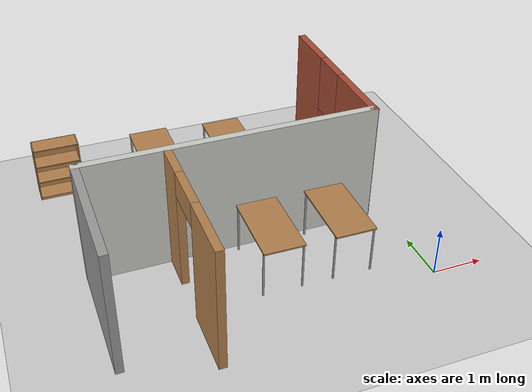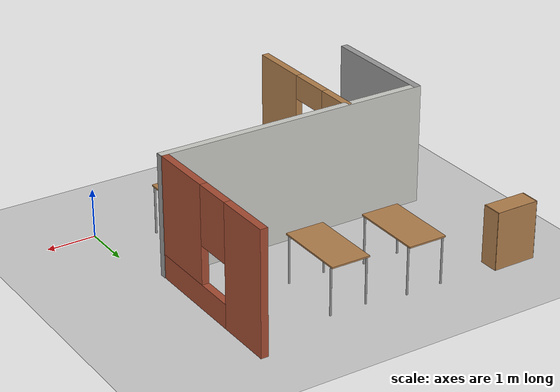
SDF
<sdf version="1.6">
 <world name="default">
  <model name="ground_plane">
   <static>1</static>
   <link name="link">
    <collision name="collision">
     <geometry><plane><normal>0 0 1</normal><size>100 100</size></plane></geometry>
     <surface><friction><ode><mu>100</mu><mu2>50</mu2></ode></friction></surface>
    </collision>
    <visual name="visual">
     <cast_shadows>0</cast_shadows>
     <geometry><plane><normal>0 0 1</normal><size>100 100</size></plane></geometry>
     <material>
      <script><uri>file://media/materials/scripts/gazebo.material</uri><name>Gazebo/Grey</name></script>
     </material>
    </visual>
   </link>
  </model>
  <model name="Building">
   <link name="Wall_18">
    <pose>1.7604 1.2188 0 0 0 -1.5708</pose>
    <visual name="Wall_18_Visual_0">
     <pose>-1.07615 0 1.25 0 -0 0</pose>
     <geometry><box><size>0.804732 0.15 2.5</size></box></geometry>
     <material>
      <script><uri>file://media/materials/scripts/gazebo.material</uri><name>Gazebo/Wood</name></script>
      <ambient>1 1 1 1</ambient>
      <shader type="pixel"/>
      <diffuse>1 1 1 1</diffuse>
      <specular>0.2 0.2 0.2 1</specular>
      <emissive>0 0 0 1</emissive>
     </material>
     <meta><layer>0</layer></meta>
    </visual>
    <visual name="Wall_18_Visual_1">
     <pose>0.852366 0 1.25 0 -0 0</pose>
     <geometry><box><size>1.2523 0.15 2.5</size></box></geometry>
     <material>
      <script><uri>file://media/materials/scripts/gazebo.material</uri><name>Gazebo/Wood</name></script>
      <ambient>1 1 1 1</ambient>
      <shader type="pixel"/>
      <diffuse>1 1 1 1</diffuse>
      <specular>0.2 0.2 0.2 1</specular>
      <emissive>0 0 0 1</emissive>
     </material>
     <meta><layer>0</layer></meta>
    </visual>
    <visual name="Wall_18_Visual_2">
     <pose>-0.223783 0 2.25 0 -0 0</pose>
     <geometry><box><size>0.9 0.15 0.5</size></box></geometry>
     <material>
      <script><uri>file://media/materials/scripts/gazebo.material</uri><name>Gazebo/Wood</name></script>
      <ambient>1 1 1 1</ambient>
      <shader type="pixel"/>
      <diffuse>1 1 1 1</diffuse>
      <specular>0.2 0.2 0.2 1</specular>
      <emissive>0 0 0 1</emissive>
     </material>
     <meta><layer>0</layer></meta>
    </visual>
    <collision name="Wall_18_Collision_0">
     <pose>-1.07615 0 1.25 0 -0 0</pose>
     <geometry><box><size>0.804732 0.15 2.5</size></box></geometry>
     <surface>
      <friction>
       <ode><mu>1</mu><mu2>1</mu2><fdir1>0 0 0</fdir1><slip1>0</slip1><slip2>0</slip2></ode>
       <torsional>
        <coefficient>1</coefficient>
        <patch_radius>0</patch_radius>
        <surface_radius>0</surface_radius>
        <use_patch_radius>1</use_patch_radius>
        <ode><slip>0</slip></ode>
       </torsional>
      </friction>
      <bounce><restitution_coefficient>0</restitution_coefficient><threshold>1e+06</threshold></bounce>
      <contact>
       <collide_without_contact>0</collide_without_contact>
       <collide_without_contact_bitmask>1</collide_without_contact_bitmask>
       <collide_bitmask>1</collide_bitmask>
       <ode>
        <soft_cfm>0</soft_cfm>
        <soft_erp>0.2</soft_erp>
        <kp>1e+13</kp>
        <kd>1</kd>
        <max_vel>0.01</max_vel>
        <min_depth>0</min_depth>
       </ode>
       <bullet>
        <split_impulse>1</split_impulse>
        <split_impulse_penetration_threshold>-0.01</split_impulse_penetration_threshold>
        <soft_cfm>0</soft_cfm>
        <soft_erp>0.2</soft_erp>
        <kp>1e+13</kp>
        <kd>1</kd>
       </bullet>
      </contact>
     </surface>
    </collision>
    <collision name="Wall_18_Collision_1">
     <pose>0.852366 0 1.25 0 -0 0</pose>
     <geometry><box><size>1.2523 0.15 2.5</size></box></geometry>
     <surface>
      <friction>
       <ode><mu>1</mu><mu2>1</mu2><fdir1>0 0 0</fdir1><slip1>0</slip1><slip2>0</slip2></ode>
       <torsional>
        <coefficient>1</coefficient>
        <patch_radius>0</patch_radius>
        <surface_radius>0</surface_radius>
        <use_patch_radius>1</use_patch_radius>
        <ode><slip>0</slip></ode>
       </torsional>
      </friction>
      <bounce><restitution_coefficient>0</restitution_coefficient><threshold>1e+06</threshold></bounce>
      <contact>
       <collide_without_contact>0</collide_without_contact>
       <collide_without_contact_bitmask>1</collide_without_contact_bitmask>
       <collide_bitmask>1</collide_bitmask>
       <ode>
        <soft_cfm>0</soft_cfm>
        <soft_erp>0.2</soft_erp>
        <kp>1e+13</kp>
        <kd>1</kd>
        <max_vel>0.01</max_vel>
        <min_depth>0</min_depth>
       </ode>
       <bullet>
        <split_impulse>1</split_impulse>
        <split_impulse_penetration_threshold>-0.01</split_impulse_penetration_threshold>
        <soft_cfm>0</soft_cfm>
        <soft_erp>0.2</soft_erp>
        <kp>1e+13</kp>
        <kd>1</kd>
       </bullet>
      </contact>
     </surface>
    </collision>
    <collision name="Wall_18_Collision_2">
     <pose>-0.223783 0 2.25 0 -0 0</pose>
     <geometry><box><size>0.9 0.15 0.5</size></box></geometry>
     <surface>
      <friction>
       <ode><mu>1</mu><mu2>1</mu2><fdir1>0 0 0</fdir1><slip1>0</slip1><slip2>0</slip2></ode>
       <torsional>
        <coefficient>1</coefficient>
        <patch_radius>0</patch_radius>
        <surface_radius>0</surface_radius>
        <use_patch_radius>1</use_patch_radius>
        <ode><slip>0</slip></ode>
       </torsional>
      </friction>
      <bounce><restitution_coefficient>0</restitution_coefficient><threshold>1e+06</threshold></bounce>
      <contact>
       <collide_without_contact>0</collide_without_contact>
       <collide_without_contact_bitmask>1</collide_without_contact_bitmask>
       <collide_bitmask>1</collide_bitmask>
       <ode>
        <soft_cfm>0</soft_cfm>
        <soft_erp>0.2</soft_erp>
        <kp>1e+13</kp>
        <kd>1</kd>
        <max_vel>0.01</max_vel>
        <min_depth>0</min_depth>
       </ode>
       <bullet>
        <split_impulse>1</split_impulse>
        <split_impulse_penetration_threshold>-0.01</split_impulse_penetration_threshold>
        <soft_cfm>0</soft_cfm>
        <soft_erp>0.2</soft_erp>
        <kp>1e+13</kp>
        <kd>1</kd>
       </bullet>
      </contact>
     </surface>
    </collision>
   </link>
   <link name="Wall_3">
    <pose>2.96056 2.65 0 0 -0 3.14159</pose>
    <visual name="Wall_3_Visual">
     <pose>0 0 1.25 0 -0 0</pose>
     <geometry><box><size>5.75 0.15 2.5</size></box></geometry>
     <material>
      <script><uri>file://media/materials/scripts/gazebo.material</uri><name>Gazebo/CeilingTiled</name></script>
      <ambient>1 1 1 1</ambient>
      <shader type="pixel"/>
      <diffuse>1 1 1 1</diffuse>
      <specular>0 0 0 1</specular>
      <emissive>0 0 0 1</emissive>
     </material>
     <meta><layer>0</layer></meta>
    </visual>
    <collision name="Wall_3_Collision">
     <pose>0 0 1.25 0 -0 0</pose>
     <geometry><box><size>5.75 0.15 2.5</size></box></geometry>
     <surface>
      <friction>
       <ode><mu>1</mu><mu2>1</mu2><fdir1>0 0 0</fdir1><slip1>0</slip1><slip2>0</slip2></ode>
       <torsional>
        <coefficient>1</coefficient>
        <patch_radius>0</patch_radius>
        <surface_radius>0</surface_radius>
        <use_patch_radius>1</use_patch_radius>
        <ode><slip>0</slip></ode>
       </torsional>
      </friction>
      <bounce><restitution_coefficient>0</restitution_coefficient><threshold>1e+06</threshold></bounce>
      <contact>
       <collide_without_contact>0</collide_without_contact>
       <collide_without_contact_bitmask>1</collide_without_contact_bitmask>
       <collide_bitmask>1</collide_bitmask>
       <ode>
        <soft_cfm>0</soft_cfm>
        <soft_erp>0.2</soft_erp>
        <kp>1e+13</kp>
        <kd>1</kd>
        <max_vel>0.01</max_vel>
        <min_depth>0</min_depth>
       </ode>
       <bullet>
        <split_impulse>1</split_impulse>
        <split_impulse_penetration_threshold>-0.01</split_impulse_penetration_threshold>
        <soft_cfm>0</soft_cfm>
        <soft_erp>0.2</soft_erp>
        <kp>1e+13</kp>
        <kd>1</kd>
       </bullet>
      </contact>
     </surface>
    </collision>
   </link>
   <link name="Wall_4">
    <pose>0.160561 1.475 0 0 0 -1.5708</pose>
    <visual name="Wall_4_Visual">
     <pose>0 0 1.25 0 -0 0</pose>
     <geometry><box><size>2.5 0.15 2.5</size></box></geometry>
     <material>
      <script><uri>file://media/materials/scripts/gazebo.material</uri><name>Gazebo/Grey</name></script>
      <ambient>1 1 1 1</ambient>
      <shader type="pixel"/>
      <diffuse>0.7 0.7 0.7 1</diffuse>
      <specular>0.01 0.01 0.01 1</specular>
      <emissive>0 0 0 1</emissive>
     </material>
     <meta><layer>0</layer></meta>
    </visual>
    <collision name="Wall_4_Collision">
     <pose>0 0 1.25 0 -0 0</pose>
     <geometry><box><size>2.5 0.15 2.5</size></box></geometry>
     <surface>
      <friction>
       <ode><mu>1</mu><mu2>1</mu2><fdir1>0 0 0</fdir1><slip1>0</slip1><slip2>0</slip2></ode>
       <torsional>
        <coefficient>1</coefficient>
        <patch_radius>0</patch_radius>
        <surface_radius>0</surface_radius>
        <use_patch_radius>1</use_patch_radius>
        <ode><slip>0</slip></ode>
       </torsional>
      </friction>
      <bounce><restitution_coefficient>0</restitution_coefficient><threshold>1e+06</threshold></bounce>
      <contact>
       <collide_without_contact>0</collide_without_contact>
       <collide_without_contact_bitmask>1</collide_without_contact_bitmask>
       <collide_bitmask>1</collide_bitmask>
       <ode>
        <soft_cfm>0</soft_cfm>
        <soft_erp>0.2</soft_erp>
        <kp>1e+13</kp>
        <kd>1</kd>
        <max_vel>0.01</max_vel>
        <min_depth>0</min_depth>
       </ode>
       <bullet>
        <split_impulse>1</split_impulse>
        <split_impulse_penetration_threshold>-0.01</split_impulse_penetration_threshold>
        <soft_cfm>0</soft_cfm>
        <soft_erp>0.2</soft_erp>
        <kp>1e+13</kp>
        <kd>1</kd>
       </bullet>
      </contact>
     </surface>
    </collision>
   </link>
   <link name="Wall_46">
    <pose>5.76056 4.3 0 0 0 -1.5708</pose>
    <visual name="Wall_46_Visual_0">
     <pose>-1.14462 0 1.25 0 -0 0</pose>
     <geometry><box><size>1.16077 0.15 2.5</size></box></geometry>
     <material>
      <script><uri>file://media/materials/scripts/gazebo.material</uri><name>Gazebo/Bricks</name></script>
      <ambient>1 1 1 1</ambient>
      <shader type="pixel"/>
      <diffuse>1 1 1 1</diffuse>
      <specular>0.2 0.2 0.2 1</specular>
      <emissive>0 0 0 1</emissive>
     </material>
     <meta><layer>0</layer></meta>
    </visual>
    <visual name="Wall_46_Visual_1">
     <pose>0.580384 0 0.25 0 -0 0</pose>
     <geometry><box><size>2.28923 0.15 0.5</size></box></geometry>
     <material>
      <script><uri>file://media/materials/scripts/gazebo.material</uri><name>Gazebo/Bricks</name></script>
      <ambient>1 1 1 1</ambient>
      <shader type="pixel"/>
      <diffuse>1 1 1 1</diffuse>
      <specular>0.2 0.2 0.2 1</specular>
      <emissive>0 0 0 1</emissive>
     </material>
     <meta><layer>0</layer></meta>
    </visual>
    <visual name="Wall_46_Visual_2">
     <pose>0.980384 0 1.5 0 -0 0</pose>
     <geometry><box><size>1.48923 0.15 2</size></box></geometry>
     <material>
      <script><uri>file://media/materials/scripts/gazebo.material</uri><name>Gazebo/Bricks</name></script>
      <ambient>1 1 1 1</ambient>
      <shader type="pixel"/>
      <diffuse>1 1 1 1</diffuse>
      <specular>0.2 0.2 0.2 1</specular>
      <emissive>0 0 0 1</emissive>
     </material>
     <meta><layer>0</layer></meta>
    </visual>
    <visual name="Wall_46_Visual_3">
     <pose>-0.164232 0 1.9 0 -0 0</pose>
     <geometry><box><size>0.8 0.15 1.2</size></box></geometry>
     <material>
      <script><uri>file://media/materials/scripts/gazebo.material</uri><name>Gazebo/Bricks</name></script>
      <ambient>1 1 1 1</ambient>
      <shader type="pixel"/>
      <diffuse>1 1 1 1</diffuse>
      <specular>0.2 0.2 0.2 1</specular>
      <emissive>0 0 0 1</emissive>
     </material>
     <meta><layer>0</layer></meta>
    </visual>
    <collision name="Wall_46_Collision_0">
     <pose>-1.14462 0 1.25 0 -0 0</pose>
     <geometry><box><size>1.16077 0.15 2.5</size></box></geometry>
     <surface>
      <friction>
       <ode><mu>1</mu><mu2>1</mu2><fdir1>0 0 0</fdir1><slip1>0</slip1><slip2>0</slip2></ode>
       <torsional>
        <coefficient>1</coefficient>
        <patch_radius>0</patch_radius>
        <surface_radius>0</surface_radius>
        <use_patch_radius>1</use_patch_radius>
        <ode><slip>0</slip></ode>
       </torsional>
      </friction>
      <bounce><restitution_coefficient>0</restitution_coefficient><threshold>1e+06</threshold></bounce>
      <contact>
       <collide_without_contact>0</collide_without_contact>
       <collide_without_contact_bitmask>1</collide_without_contact_bitmask>
       <collide_bitmask>1</collide_bitmask>
       <ode>
        <soft_cfm>0</soft_cfm>
        <soft_erp>0.2</soft_erp>
        <kp>1e+13</kp>
        <kd>1</kd>
        <max_vel>0.01</max_vel>
        <min_depth>0</min_depth>
       </ode>
       <bullet>
        <split_impulse>1</split_impulse>
        <split_impulse_penetration_threshold>-0.01</split_impulse_penetration_threshold>
        <soft_cfm>0</soft_cfm>
        <soft_erp>0.2</soft_erp>
        <kp>1e+13</kp>
        <kd>1</kd>
       </bullet>
      </contact>
     </surface>
    </collision>
    <collision name="Wall_46_Collision_2">
     <pose>0.980384 0 1.5 0 -0 0</pose>
     <geometry><box><size>1.48923 0.15 2</size></box></geometry>
     <surface>
      <friction>
       <ode><mu>1</mu><mu2>1</mu2><fdir1>0 0 0</fdir1><slip1>0</slip1><slip2>0</slip2></ode>
       <torsional>
        <coefficient>1</coefficient>
        <patch_radius>0</patch_radius>
        <surface_radius>0</surface_radius>
        <use_patch_radius>1</use_patch_radius>
        <ode><slip>0</slip></ode>
       </torsional>
      </friction>
      <bounce><restitution_coefficient>0</restitution_coefficient><threshold>1e+06</threshold></bounce>
      <contact>
       <collide_without_contact>0</collide_without_contact>
       <collide_without_contact_bitmask>1</collide_without_contact_bitmask>
       <collide_bitmask>1</collide_bitmask>
       <ode>
        <soft_cfm>0</soft_cfm>
        <soft_erp>0.2</soft_erp>
        <kp>1e+13</kp>
        <kd>1</kd>
        <max_vel>0.01</max_vel>
        <min_depth>0</min_depth>
       </ode>
       <bullet>
        <split_impulse>1</split_impulse>
        <split_impulse_penetration_threshold>-0.01</split_impulse_penetration_threshold>
        <soft_cfm>0</soft_cfm>
        <soft_erp>0.2</soft_erp>
        <kp>1e+13</kp>
        <kd>1</kd>
       </bullet>
      </contact>
     </surface>
    </collision>
    <collision name="Wall_46_Collision_1">
     <pose>0.580384 0 0.25 0 -0 0</pose>
     <geometry><box><size>2.28923 0.15 0.5</size></box></geometry>
     <surface>
      <friction>
       <ode><mu>1</mu><mu2>1</mu2><fdir1>0 0 0</fdir1><slip1>0</slip1><slip2>0</slip2></ode>
       <torsional>
        <coefficient>1</coefficient>
        <patch_radius>0</patch_radius>
        <surface_radius>0</surface_radius>
        <use_patch_radius>1</use_patch_radius>
        <ode><slip>0</slip></ode>
       </torsional>
      </friction>
      <bounce><restitution_coefficient>0</restitution_coefficient><threshold>1e+06</threshold></bounce>
      <contact>
       <collide_without_contact>0</collide_without_contact>
       <collide_without_contact_bitmask>1</collide_without_contact_bitmask>
       <collide_bitmask>1</collide_bitmask>
       <ode>
        <soft_cfm>0</soft_cfm>
        <soft_erp>0.2</soft_erp>
        <kp>1e+13</kp>
        <kd>1</kd>
        <max_vel>0.01</max_vel>
        <min_depth>0</min_depth>
       </ode>
       <bullet>
        <split_impulse>1</split_impulse>
        <split_impulse_penetration_threshold>-0.01</split_impulse_penetration_threshold>
        <soft_cfm>0</soft_cfm>
        <soft_erp>0.2</soft_erp>
        <kp>1e+13</kp>
        <kd>1</kd>
       </bullet>
      </contact>
     </surface>
    </collision>
    <collision name="Wall_46_Collision_3">
     <pose>-0.164232 0 1.9 0 -0 0</pose>
     <geometry><box><size>0.8 0.15 1.2</size></box></geometry>
     <surface>
      <friction>
       <ode><mu>1</mu><mu2>1</mu2><fdir1>0 0 0</fdir1><slip1>0</slip1><slip2>0</slip2></ode>
       <torsional>
        <coefficient>1</coefficient>
        <patch_radius>0</patch_radius>
        <surface_radius>0</surface_radius>
        <use_patch_radius>1</use_patch_radius>
        <ode><slip>0</slip></ode>
       </torsional>
      </friction>
      <bounce><restitution_coefficient>0</restitution_coefficient><threshold>1e+06</threshold></bounce>
      <contact>
       <collide_without_contact>0</collide_without_contact>
       <collide_without_contact_bitmask>1</collide_without_contact_bitmask>
       <collide_bitmask>1</collide_bitmask>
       <ode>
        <soft_cfm>0</soft_cfm>
        <soft_erp>0.2</soft_erp>
        <kp>1e+13</kp>
        <kd>1</kd>
        <max_vel>0.01</max_vel>
        <min_depth>0</min_depth>
       </ode>
       <bullet>
        <split_impulse>1</split_impulse>
        <split_impulse_penetration_threshold>-0.01</split_impulse_penetration_threshold>
        <soft_cfm>0</soft_cfm>
        <soft_erp>0.2</soft_erp>
        <kp>1e+13</kp>
        <kd>1</kd>
       </bullet>
      </contact>
     </surface>
    </collision>
   </link>
   <link name="Wall_47">
    <pose>5.76556 2.65 0 0 -0 0</pose>
    <visual name="Wall_47_Visual">
     <pose>0 0 1.25 0 -0 0</pose>
     <geometry><box><size>0.16 0.15 2.5</size></box></geometry>
     <material>
      <script><uri>file://media/materials/scripts/gazebo.material</uri><name>Gazebo/Grey</name></script>
      <ambient>1 1 1 1</ambient>
      <shader type="pixel"/>
      <diffuse>0.7 0.7 0.7 1</diffuse>
      <specular>0.01 0.01 0.01 1</specular>
      <emissive>0 0 0 1</emissive>
     </material>
     <meta><layer>0</layer></meta>
    </visual>
    <collision name="Wall_47_Collision">
     <pose>0 0 1.25 0 -0 0</pose>
     <geometry><box><size>0.16 0.15 2.5</size></box></geometry>
     <surface>
      <friction>
       <ode><mu>1</mu><mu2>1</mu2><fdir1>0 0 0</fdir1><slip1>0</slip1><slip2>0</slip2></ode>
       <torsional>
        <coefficient>1</coefficient>
        <patch_radius>0</patch_radius>
        <surface_radius>0</surface_radius>
        <use_patch_radius>1</use_patch_radius>
        <ode><slip>0</slip></ode>
       </torsional>
      </friction>
      <bounce><restitution_coefficient>0</restitution_coefficient><threshold>1e+06</threshold></bounce>
      <contact>
       <collide_without_contact>0</collide_without_contact>
       <collide_without_contact_bitmask>1</collide_without_contact_bitmask>
       <collide_bitmask>1</collide_bitmask>
       <ode>
        <soft_cfm>0</soft_cfm>
        <soft_erp>0.2</soft_erp>
        <kp>1e+13</kp>
        <kd>1</kd>
        <max_vel>0.01</max_vel>
        <min_depth>0</min_depth>
       </ode>
       <bullet>
        <split_impulse>1</split_impulse>
        <split_impulse_penetration_threshold>-0.01</split_impulse_penetration_threshold>
        <soft_cfm>0</soft_cfm>
        <soft_erp>0.2</soft_erp>
        <kp>1e+13</kp>
        <kd>1</kd>
       </bullet>
      </contact>
     </surface>
    </collision>
   </link>
   <static>1</static>
   <pose>-6.1852 -0.576906 0 0 -0 0</pose>
  </model>
  <model name="bookshelf">
   <static>1</static>
   <link name="link">
    <inertial><mass>1</mass></inertial>
    <collision name="back">
     <pose>0 0.005 0.6 0 -0 0</pose>
     <geometry><box><size>0.9 0.01 1.2</size></box></geometry>
    </collision>
    <visual name="visual1">
     <pose>0 0.005 0.6 0 -0 0</pose>
     <geometry><box><size>0.9 0.01 1.2</size></box></geometry>
     <material>
      <script><uri>file://media/materials/scripts/gazebo.material</uri><name>Gazebo/Wood</name></script>
     </material>
    </visual>
    <collision name="left_side">
     <pose>0.45 -0.195 0.6 0 -0 0</pose>
     <geometry><box><size>0.02 0.4 1.2</size></box></geometry>
    </collision>
    <visual name="visual2">
     <pose>0.45 -0.195 0.6 0 -0 0</pose>
     <geometry><box><size>0.02 0.4 1.2</size></box></geometry>
     <material>
      <script><uri>file://media/materials/scripts/gazebo.material</uri><name>Gazebo/Wood</name></script>
     </material>
    </visual>
    <collision name="right_side">
     <pose>-0.45 -0.195 0.6 0 -0 0</pose>
     <geometry><box><size>0.02 0.4 1.2</size></box></geometry>
    </collision>
    <visual name="visual3">
     <pose>-0.45 -0.195 0.6 0 -0 0</pose>
     <geometry><box><size>0.02 0.4 1.2</size></box></geometry>
     <material>
      <script><uri>file://media/materials/scripts/gazebo.material</uri><name>Gazebo/Wood</name></script>
     </material>
    </visual>
    <collision name="bottom">
     <pose>0 -0.195 0.03 0 -0 0</pose>
     <geometry><box><size>0.88 0.4 0.06</size></box></geometry>
    </collision>
    <visual name="visual4">
     <pose>0 -0.195 0.03 0 -0 0</pose>
     <geometry><box><size>0.88 0.4 0.06</size></box></geometry>
     <material>
      <script><uri>file://media/materials/scripts/gazebo.material</uri><name>Gazebo/Wood</name></script>
     </material>
    </visual>
    <collision name="top">
     <pose>0 -0.195 1.19 0 -0 0</pose>
     <geometry><box><size>0.88 0.4 0.02</size></box></geometry>
    </collision>
    <visual name="visual5">
     <pose>0 -0.195 1.19 0 -0 0</pose>
     <geometry><box><size>0.88 0.4 0.02</size></box></geometry>
     <material>
      <script><uri>file://media/materials/scripts/gazebo.material</uri><name>Gazebo/Wood</name></script>
     </material>
    </visual>
    <collision name="low_shelf">
     <pose>0 -0.195 0.43 0 -0 0</pose>
     <geometry><box><size>0.88 0.4 0.02</size></box></geometry>
    </collision>
    <visual name="visual6">
     <pose>0 -0.195 0.43 0 -0 0</pose>
     <geometry><box><size>0.88 0.4 0.02</size></box></geometry>
     <material>
      <script><uri>file://media/materials/scripts/gazebo.material</uri><name>Gazebo/Wood</name></script>
     </material>
    </visual>
    <collision name="high_shelf">
     <pose>0 -0.195 0.8 0 -0 0</pose>
     <geometry><box><size>0.88 0.4 0.02</size></box></geometry>
    </collision>
    <visual name="visual7">
     <pose>0 -0.195 0.8 0 -0 0</pose>
     <geometry><box><size>0.88 0.4 0.02</size></box></geometry>
     <material>
      <script><uri>file://media/materials/scripts/gazebo.material</uri><name>Gazebo/Wood</name></script>
     </material>
    </visual>
   </link>
   <pose>-6.07851 5.21815 0 0 -0 0</pose>
  </model>
  <model name="table_0">
   <static>1</static>
   <link name="link">
    <collision name="surface">
     <pose>0 0 1 0 -0 0</pose>
     <geometry><box><size>1.5 0.8 0.03</size></box></geometry>
     <surface><friction><ode><mu>0.6</mu><mu2>0.6</mu2></ode></friction></surface>
    </collision>
    <visual name="visual1">
     <pose>0 0 1 0 -0 0</pose>
     <geometry><box><size>1.5 0.8 0.03</size></box></geometry>
     <material>
      <script><uri>file://media/materials/scripts/gazebo.material</uri><name>Gazebo/Wood</name></script>
     </material>
    </visual>
    <collision name="front_left_leg">
     <pose>0.68 0.38 0.5 0 -0 0</pose>
     <geometry><cylinder><radius>0.02</radius><length>1</length></cylinder></geometry>
    </collision>
    <visual name="front_left_leg">
     <pose>0.68 0.38 0.5 0 -0 0</pose>
     <geometry><cylinder><radius>0.02</radius><length>1</length></cylinder></geometry>
     <material>
      <script><uri>file://media/materials/scripts/gazebo.material</uri><name>Gazebo/Grey</name></script>
     </material>
    </visual>
    <collision name="front_right_leg">
     <pose>0.68 -0.38 0.5 0 -0 0</pose>
     <geometry><cylinder><radius>0.02</radius><length>1</length></cylinder></geometry>
    </collision>
    <visual name="front_right_leg">
     <pose>0.68 -0.38 0.5 0 -0 0</pose>
     <geometry><cylinder><radius>0.02</radius><length>1</length></cylinder></geometry>
     <material>
      <script><uri>file://media/materials/scripts/gazebo.material</uri><name>Gazebo/Grey</name></script>
     </material>
    </visual>
    <collision name="back_right_leg">
     <pose>-0.68 -0.38 0.5 0 -0 0</pose>
     <geometry><cylinder><radius>0.02</radius><length>1</length></cylinder></geometry>
    </collision>
    <visual name="back_right_leg">
     <pose>-0.68 -0.38 0.5 0 -0 0</pose>
     <geometry><cylinder><radius>0.02</radius><length>1</length></cylinder></geometry>
     <material>
      <script><uri>file://media/materials/scripts/gazebo.material</uri><name>Gazebo/Grey</name></script>
     </material>
    </visual>
    <collision name="back_left_leg">
     <pose>-0.68 0.38 0.5 0 -0 0</pose>
     <geometry><cylinder><radius>0.02</radius><length>1</length></cylinder></geometry>
    </collision>
    <visual name="back_left_leg">
     <pose>-0.68 0.38 0.5 0 -0 0</pose>
     <geometry><cylinder><radius>0.02</radius><length>1</length></cylinder></geometry>
     <material>
      <script><uri>file://media/materials/scripts/gazebo.material</uri><name>Gazebo/Grey</name></script>
     </material>
    </visual>
   </link>
   <pose>-2.5326 4.22107 0 0 -0 1.56462</pose>
  </model>
  <model name="table_0_clone">
   <static>1</static>
   <link name="link">
    <collision name="surface">
     <pose>0 0 1 0 -0 0</pose>
     <geometry><box><size>1.5 0.8 0.03</size></box></geometry>
     <surface><friction><ode><mu>0.6</mu><mu2>0.6</mu2></ode></friction></surface>
    </collision>
    <visual name="visual1">
     <pose>0 0 1 0 -0 0</pose>
     <geometry><box><size>1.5 0.8 0.03</size></box></geometry>
     <material>
      <script><uri>file://media/materials/scripts/gazebo.material</uri><name>Gazebo/Wood</name></script>
     </material>
    </visual>
    <collision name="front_left_leg">
     <pose>0.68 0.38 0.5 0 -0 0</pose>
     <geometry><cylinder><radius>0.02</radius><length>1</length></cylinder></geometry>
    </collision>
    <visual name="front_left_leg">
     <pose>0.68 0.38 0.5 0 -0 0</pose>
     <geometry><cylinder><radius>0.02</radius><length>1</length></cylinder></geometry>
     <material>
      <script><uri>file://media/materials/scripts/gazebo.material</uri><name>Gazebo/Grey</name></script>
     </material>
    </visual>
    <collision name="front_right_leg">
     <pose>0.68 -0.38 0.5 0 -0 0</pose>
     <geometry><cylinder><radius>0.02</radius><length>1</length></cylinder></geometry>
    </collision>
    <visual name="front_right_leg">
     <pose>0.68 -0.38 0.5 0 -0 0</pose>
     <geometry><cylinder><radius>0.02</radius><length>1</length></cylinder></geometry>
     <material>
      <script><uri>file://media/materials/scripts/gazebo.material</uri><name>Gazebo/Grey</name></script>
     </material>
    </visual>
    <collision name="back_right_leg">
     <pose>-0.68 -0.38 0.5 0 -0 0</pose>
     <geometry><cylinder><radius>0.02</radius><length>1</length></cylinder></geometry>
    </collision>
    <visual name="back_right_leg">
     <pose>-0.68 -0.38 0.5 0 -0 0</pose>
     <geometry><cylinder><radius>0.02</radius><length>1</length></cylinder></geometry>
     <material>
      <script><uri>file://media/materials/scripts/gazebo.material</uri><name>Gazebo/Grey</name></script>
     </material>
    </visual>
    <collision name="back_left_leg">
     <pose>-0.68 0.38 0.5 0 -0 0</pose>
     <geometry><cylinder><radius>0.02</radius><length>1</length></cylinder></geometry>
    </collision>
    <visual name="back_left_leg">
     <pose>-0.68 0.38 0.5 0 -0 0</pose>
     <geometry><cylinder><radius>0.02</radius><length>1</length></cylinder></geometry>
     <material>
      <script><uri>file://media/materials/scripts/gazebo.material</uri><name>Gazebo/Grey</name></script>
     </material>
    </visual>
   </link>
   <pose>-4.10963 4.36382 0 0 -0 1.56462</pose>
  </model>
  <model name="table_3">
   <static>1</static>
   <link name="link">
    <collision name="surface">
     <pose>0 0 1 0 -0 0</pose>
     <geometry><box><size>1.5 0.8 0.03</size></box></geometry>
     <surface><friction><ode><mu>0.6</mu><mu2>0.6</mu2></ode></friction></surface>
    </collision>
    <visual name="visual1">
     <pose>0 0 1 0 -0 0</pose>
     <geometry><box><size>1.5 0.8 0.03</size></box></geometry>
     <material>
      <script><uri>file://media/materials/scripts/gazebo.material</uri><name>Gazebo/Wood</name></script>
     </material>
    </visual>
    <collision name="front_left_leg">
     <pose>0.68 0.38 0.5 0 -0 0</pose>
     <geometry><cylinder><radius>0.02</radius><length>1</length></cylinder></geometry>
    </collision>
    <visual name="front_left_leg">
     <pose>0.68 0.38 0.5 0 -0 0</pose>
     <geometry><cylinder><radius>0.02</radius><length>1</length></cylinder></geometry>
     <material>
      <script><uri>file://media/materials/scripts/gazebo.material</uri><name>Gazebo/Grey</name></script>
     </material>
    </visual>
    <collision name="front_right_leg">
     <pose>0.68 -0.38 0.5 0 -0 0</pose>
     <geometry><cylinder><radius>0.02</radius><length>1</length></cylinder></geometry>
    </collision>
    <visual name="front_right_leg">
     <pose>0.68 -0.38 0.5 0 -0 0</pose>
     <geometry><cylinder><radius>0.02</radius><length>1</length></cylinder></geometry>
     <material>
      <script><uri>file://media/materials/scripts/gazebo.material</uri><name>Gazebo/Grey</name></script>
     </material>
    </visual>
    <collision name="back_right_leg">
     <pose>-0.68 -0.38 0.5 0 -0 0</pose>
     <geometry><cylinder><radius>0.02</radius><length>1</length></cylinder></geometry>
    </collision>
    <visual name="back_right_leg">
     <pose>-0.68 -0.38 0.5 0 -0 0</pose>
     <geometry><cylinder><radius>0.02</radius><length>1</length></cylinder></geometry>
     <material>
      <script><uri>file://media/materials/scripts/gazebo.material</uri><name>Gazebo/Grey</name></script>
     </material>
    </visual>
    <collision name="back_left_leg">
     <pose>-0.68 0.38 0.5 0 -0 0</pose>
     <geometry><cylinder><radius>0.02</radius><length>1</length></cylinder></geometry>
    </collision>
    <visual name="back_left_leg">
     <pose>-0.68 0.38 0.5 0 -0 0</pose>
     <geometry><cylinder><radius>0.02</radius><length>1</length></cylinder></geometry>
     <material>
      <script><uri>file://media/materials/scripts/gazebo.material</uri><name>Gazebo/Grey</name></script>
     </material>
    </visual>
   </link>
   <pose>-2.81556 1.21472 0 0 0 -1.5811</pose>
  </model>
  <model name="table_3_clone">
   <static>1</static>
   <link name="link">
    <collision name="surface">
     <pose>0 0 1 0 -0 0</pose>
     <geometry><box><size>1.5 0.8 0.03</size></box></geometry>
     <surface><friction><ode><mu>0.6</mu><mu2>0.6</mu2></ode></friction></surface>
    </collision>
    <visual name="visual1">
     <pose>0 0 1 0 -0 0</pose>
     <geometry><box><size>1.5 0.8 0.03</size></box></geometry>
     <material>
      <script><uri>file://media/materials/scripts/gazebo.material</uri><name>Gazebo/Wood</name></script>
     </material>
    </visual>
    <collision name="front_left_leg">
     <pose>0.68 0.38 0.5 0 -0 0</pose>
     <geometry><cylinder><radius>0.02</radius><length>1</length></cylinder></geometry>
    </collision>
    <visual name="front_left_leg">
     <pose>0.68 0.38 0.5 0 -0 0</pose>
     <geometry><cylinder><radius>0.02</radius><length>1</length></cylinder></geometry>
     <material>
      <script><uri>file://media/materials/scripts/gazebo.material</uri><name>Gazebo/Grey</name></script>
     </material>
    </visual>
    <collision name="front_right_leg">
     <pose>0.68 -0.38 0.5 0 -0 0</pose>
     <geometry><cylinder><radius>0.02</radius><length>1</length></cylinder></geometry>
    </collision>
    <visual name="front_right_leg">
     <pose>0.68 -0.38 0.5 0 -0 0</pose>
     <geometry><cylinder><radius>0.02</radius><length>1</length></cylinder></geometry>
     <material>
      <script><uri>file://media/materials/scripts/gazebo.material</uri><name>Gazebo/Grey</name></script>
     </material>
    </visual>
    <collision name="back_right_leg">
     <pose>-0.68 -0.38 0.5 0 -0 0</pose>
     <geometry><cylinder><radius>0.02</radius><length>1</length></cylinder></geometry>
    </collision>
    <visual name="back_right_leg">
     <pose>-0.68 -0.38 0.5 0 -0 0</pose>
     <geometry><cylinder><radius>0.02</radius><length>1</length></cylinder></geometry>
     <material>
      <script><uri>file://media/materials/scripts/gazebo.material</uri><name>Gazebo/Grey</name></script>
     </material>
    </visual>
    <collision name="back_left_leg">
     <pose>-0.68 0.38 0.5 0 -0 0</pose>
     <geometry><cylinder><radius>0.02</radius><length>1</length></cylinder></geometry>
    </collision>
    <visual name="back_left_leg">
     <pose>-0.68 0.38 0.5 0 -0 0</pose>
     <geometry><cylinder><radius>0.02</radius><length>1</length></cylinder></geometry>
     <material>
      <script><uri>file://media/materials/scripts/gazebo.material</uri><name>Gazebo/Grey</name></script>
     </material>
    </visual>
   </link>
   <pose>-1.44227 1.19648 0 0 0 -1.5811</pose>
  </model>
 </world>
</sdf>
